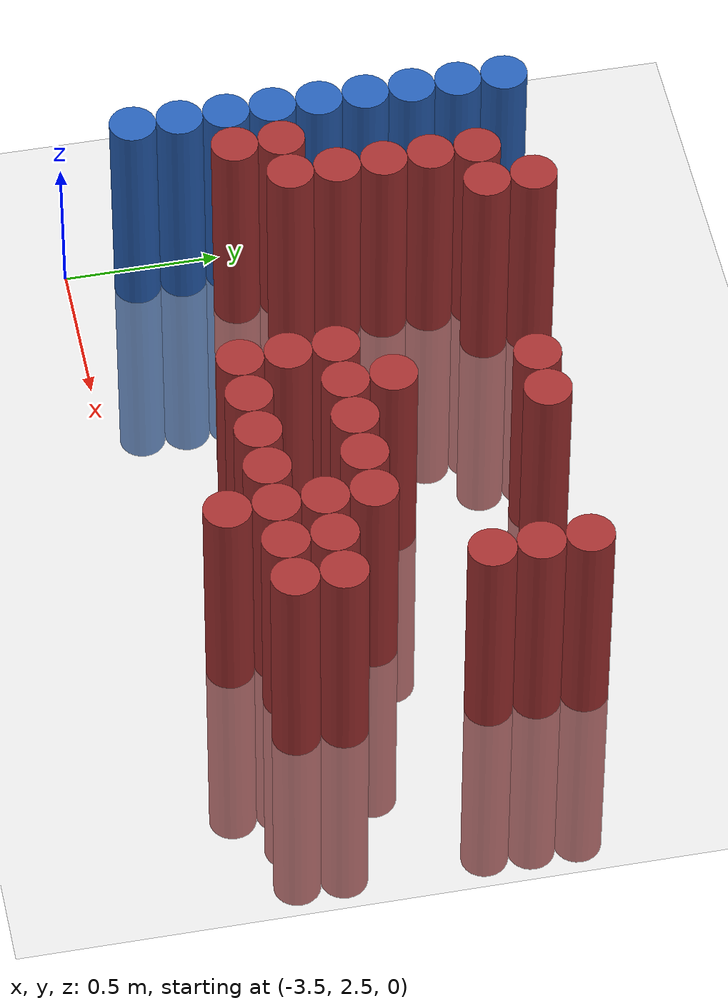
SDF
<sdf version="1.6">
 <world name="default">
  <model name="ground_plane">
   <static>1</static>
   <link name="link">
    <collision name="collision">
     <geometry><plane><normal>0 0 1</normal><size>100 100</size></plane></geometry>
     <surface><friction><ode><mu>100</mu><mu2>50</mu2></ode></friction></surface>
    </collision>
    <visual name="visual">
     <cast_shadows>0</cast_shadows>
     <geometry><plane><normal>0 0 1</normal><size>100 100</size></plane></geometry>
     <material>
      <script><uri>file://media/materials/scripts/gazebo.material</uri><name>Gazebo/Grey</name></script>
     </material>
    </visual>
   </link>
  </model>
  <model name="unit_cylinder_151">
   <static>1</static>
   <pose>-3.425000 2.725000 0.000000 0.000000 0.000000 0.000000</pose>
   <link name="link">
    <inertial>
     <mass>1</mass>
     <inertia><ixx>0.145833</ixx><ixy>0</ixy><ixz>0</ixz><iyy>0.145833</iyy><iyz>0</iyz><izz>0.125</izz></inertia>
    </inertial>
    <collision name="collision">
     <geometry><cylinder><radius>0.075000</radius><length>1.5</length></cylinder></geometry>
    </collision>
    <visual name="visual">
     <geometry><cylinder><radius>0.075000</radius><length>1.5</length></cylinder></geometry>
     <material>
      <ambient>0.152000 0.379000 0.720000 1</ambient>
      <diffuse>0.152000 0.379000 0.720000 1</diffuse>
     </material>
     <material>
      <script><name>Gazebo/Grey</name><uri>file://media/materials/scripts/gazebo.material</uri></script>
     </material>
    </visual>
   </link>
  </model>
  <model name="unit_cylinder_153">
   <static>1</static>
   <pose>-3.425000 2.875000 0.000000 0.000000 0.000000 0.000000</pose>
   <link name="link">
    <inertial>
     <mass>1</mass>
     <inertia><ixx>0.145833</ixx><ixy>0</ixy><ixz>0</ixz><iyy>0.145833</iyy><iyz>0</iyz><izz>0.125</izz></inertia>
    </inertial>
    <collision name="collision">
     <geometry><cylinder><radius>0.075000</radius><length>1.5</length></cylinder></geometry>
    </collision>
    <visual name="visual">
     <geometry><cylinder><radius>0.075000</radius><length>1.5</length></cylinder></geometry>
     <material>
      <ambient>0.152000 0.379000 0.720000 1</ambient>
      <diffuse>0.152000 0.379000 0.720000 1</diffuse>
     </material>
     <material>
      <script><name>Gazebo/Grey</name><uri>file://media/materials/scripts/gazebo.material</uri></script>
     </material>
    </visual>
   </link>
  </model>
  <model name="unit_cylinder_155">
   <static>1</static>
   <pose>-3.425000 3.025000 0.000000 0.000000 0.000000 0.000000</pose>
   <link name="link">
    <inertial>
     <mass>1</mass>
     <inertia><ixx>0.145833</ixx><ixy>0</ixy><ixz>0</ixz><iyy>0.145833</iyy><iyz>0</iyz><izz>0.125</izz></inertia>
    </inertial>
    <collision name="collision">
     <geometry><cylinder><radius>0.075000</radius><length>1.5</length></cylinder></geometry>
    </collision>
    <visual name="visual">
     <geometry><cylinder><radius>0.075000</radius><length>1.5</length></cylinder></geometry>
     <material>
      <ambient>0.152000 0.379000 0.720000 1</ambient>
      <diffuse>0.152000 0.379000 0.720000 1</diffuse>
     </material>
     <material>
      <script><name>Gazebo/Grey</name><uri>file://media/materials/scripts/gazebo.material</uri></script>
     </material>
    </visual>
   </link>
  </model>
  <model name="unit_cylinder_157">
   <static>1</static>
   <pose>-3.425000 3.175000 0.000000 0.000000 0.000000 0.000000</pose>
   <link name="link">
    <inertial>
     <mass>1</mass>
     <inertia><ixx>0.145833</ixx><ixy>0</ixy><ixz>0</ixz><iyy>0.145833</iyy><iyz>0</iyz><izz>0.125</izz></inertia>
    </inertial>
    <collision name="collision">
     <geometry><cylinder><radius>0.075000</radius><length>1.5</length></cylinder></geometry>
    </collision>
    <visual name="visual">
     <geometry><cylinder><radius>0.075000</radius><length>1.5</length></cylinder></geometry>
     <material>
      <ambient>0.152000 0.379000 0.720000 1</ambient>
      <diffuse>0.152000 0.379000 0.720000 1</diffuse>
     </material>
     <material>
      <script><name>Gazebo/Grey</name><uri>file://media/materials/scripts/gazebo.material</uri></script>
     </material>
    </visual>
   </link>
  </model>
  <model name="unit_cylinder_159">
   <static>1</static>
   <pose>-3.425000 3.325000 0.000000 0.000000 0.000000 0.000000</pose>
   <link name="link">
    <inertial>
     <mass>1</mass>
     <inertia><ixx>0.145833</ixx><ixy>0</ixy><ixz>0</ixz><iyy>0.145833</iyy><iyz>0</iyz><izz>0.125</izz></inertia>
    </inertial>
    <collision name="collision">
     <geometry><cylinder><radius>0.075000</radius><length>1.5</length></cylinder></geometry>
    </collision>
    <visual name="visual">
     <geometry><cylinder><radius>0.075000</radius><length>1.5</length></cylinder></geometry>
     <material>
      <ambient>0.152000 0.379000 0.720000 1</ambient>
      <diffuse>0.152000 0.379000 0.720000 1</diffuse>
     </material>
     <material>
      <script><name>Gazebo/Grey</name><uri>file://media/materials/scripts/gazebo.material</uri></script>
     </material>
    </visual>
   </link>
  </model>
  <model name="unit_cylinder_161">
   <static>1</static>
   <pose>-3.425000 3.475000 0.000000 0.000000 0.000000 0.000000</pose>
   <link name="link">
    <inertial>
     <mass>1</mass>
     <inertia><ixx>0.145833</ixx><ixy>0</ixy><ixz>0</ixz><iyy>0.145833</iyy><iyz>0</iyz><izz>0.125</izz></inertia>
    </inertial>
    <collision name="collision">
     <geometry><cylinder><radius>0.075000</radius><length>1.5</length></cylinder></geometry>
    </collision>
    <visual name="visual">
     <geometry><cylinder><radius>0.075000</radius><length>1.5</length></cylinder></geometry>
     <material>
      <ambient>0.152000 0.379000 0.720000 1</ambient>
      <diffuse>0.152000 0.379000 0.720000 1</diffuse>
     </material>
     <material>
      <script><name>Gazebo/Grey</name><uri>file://media/materials/scripts/gazebo.material</uri></script>
     </material>
    </visual>
   </link>
  </model>
  <model name="unit_cylinder_163">
   <static>1</static>
   <pose>-3.425000 3.625000 0.000000 0.000000 0.000000 0.000000</pose>
   <link name="link">
    <inertial>
     <mass>1</mass>
     <inertia><ixx>0.145833</ixx><ixy>0</ixy><ixz>0</ixz><iyy>0.145833</iyy><iyz>0</iyz><izz>0.125</izz></inertia>
    </inertial>
    <collision name="collision">
     <geometry><cylinder><radius>0.075000</radius><length>1.5</length></cylinder></geometry>
    </collision>
    <visual name="visual">
     <geometry><cylinder><radius>0.075000</radius><length>1.5</length></cylinder></geometry>
     <material>
      <ambient>0.152000 0.379000 0.720000 1</ambient>
      <diffuse>0.152000 0.379000 0.720000 1</diffuse>
     </material>
     <material>
      <script><name>Gazebo/Grey</name><uri>file://media/materials/scripts/gazebo.material</uri></script>
     </material>
    </visual>
   </link>
  </model>
  <model name="unit_cylinder_165">
   <static>1</static>
   <pose>-3.425000 3.775000 0.000000 0.000000 0.000000 0.000000</pose>
   <link name="link">
    <inertial>
     <mass>1</mass>
     <inertia><ixx>0.145833</ixx><ixy>0</ixy><ixz>0</ixz><iyy>0.145833</iyy><iyz>0</iyz><izz>0.125</izz></inertia>
    </inertial>
    <collision name="collision">
     <geometry><cylinder><radius>0.075000</radius><length>1.5</length></cylinder></geometry>
    </collision>
    <visual name="visual">
     <geometry><cylinder><radius>0.075000</radius><length>1.5</length></cylinder></geometry>
     <material>
      <ambient>0.152000 0.379000 0.720000 1</ambient>
      <diffuse>0.152000 0.379000 0.720000 1</diffuse>
     </material>
     <material>
      <script><name>Gazebo/Grey</name><uri>file://media/materials/scripts/gazebo.material</uri></script>
     </material>
    </visual>
   </link>
  </model>
  <model name="unit_cylinder_167">
   <static>1</static>
   <pose>-3.425000 3.925000 0.000000 0.000000 0.000000 0.000000</pose>
   <link name="link">
    <inertial>
     <mass>1</mass>
     <inertia><ixx>0.145833</ixx><ixy>0</ixy><ixz>0</ixz><iyy>0.145833</iyy><iyz>0</iyz><izz>0.125</izz></inertia>
    </inertial>
    <collision name="collision">
     <geometry><cylinder><radius>0.075000</radius><length>1.5</length></cylinder></geometry>
    </collision>
    <visual name="visual">
     <geometry><cylinder><radius>0.075000</radius><length>1.5</length></cylinder></geometry>
     <material>
      <ambient>0.152000 0.379000 0.720000 1</ambient>
      <diffuse>0.152000 0.379000 0.720000 1</diffuse>
     </material>
     <material>
      <script><name>Gazebo/Grey</name><uri>file://media/materials/scripts/gazebo.material</uri></script>
     </material>
    </visual>
   </link>
  </model>
  <model name="unit_cylinder_239">
   <static>1</static>
   <pose>-3.425000 2.725000 0.000000 0.000000 0.000000 0.000000</pose>
   <link name="link">
    <inertial>
     <mass>1</mass>
     <inertia><ixx>0.145833</ixx><ixy>0</ixy><ixz>0</ixz><iyy>0.145833</iyy><iyz>0</iyz><izz>0.125</izz></inertia>
    </inertial>
    <collision name="collision">
     <geometry><cylinder><radius>0.075000</radius><length>1.5</length></cylinder></geometry>
    </collision>
    <visual name="visual">
     <geometry><cylinder><radius>0.075000</radius><length>1.5</length></cylinder></geometry>
     <material>
      <ambient>0.152000 0.379000 0.720000 1</ambient>
      <diffuse>0.152000 0.379000 0.720000 1</diffuse>
     </material>
     <material>
      <script><name>Gazebo/Grey</name><uri>file://media/materials/scripts/gazebo.material</uri></script>
     </material>
    </visual>
   </link>
  </model>
  <model name="unit_cylinder_240">
   <static>1</static>
   <pose>-3.425000 2.875000 0.000000 0.000000 0.000000 0.000000</pose>
   <link name="link">
    <inertial>
     <mass>1</mass>
     <inertia><ixx>0.145833</ixx><ixy>0</ixy><ixz>0</ixz><iyy>0.145833</iyy><iyz>0</iyz><izz>0.125</izz></inertia>
    </inertial>
    <collision name="collision">
     <geometry><cylinder><radius>0.075000</radius><length>1.5</length></cylinder></geometry>
    </collision>
    <visual name="visual">
     <geometry><cylinder><radius>0.075000</radius><length>1.5</length></cylinder></geometry>
     <material>
      <ambient>0.152000 0.379000 0.720000 1</ambient>
      <diffuse>0.152000 0.379000 0.720000 1</diffuse>
     </material>
     <material>
      <script><name>Gazebo/Grey</name><uri>file://media/materials/scripts/gazebo.material</uri></script>
     </material>
    </visual>
   </link>
  </model>
  <model name="unit_cylinder_241">
   <static>1</static>
   <pose>-3.425000 3.025000 0.000000 0.000000 0.000000 0.000000</pose>
   <link name="link">
    <inertial>
     <mass>1</mass>
     <inertia><ixx>0.145833</ixx><ixy>0</ixy><ixz>0</ixz><iyy>0.145833</iyy><iyz>0</iyz><izz>0.125</izz></inertia>
    </inertial>
    <collision name="collision">
     <geometry><cylinder><radius>0.075000</radius><length>1.5</length></cylinder></geometry>
    </collision>
    <visual name="visual">
     <geometry><cylinder><radius>0.075000</radius><length>1.5</length></cylinder></geometry>
     <material>
      <ambient>0.152000 0.379000 0.720000 1</ambient>
      <diffuse>0.152000 0.379000 0.720000 1</diffuse>
     </material>
     <material>
      <script><name>Gazebo/Grey</name><uri>file://media/materials/scripts/gazebo.material</uri></script>
     </material>
    </visual>
   </link>
  </model>
  <model name="unit_cylinder_242">
   <static>1</static>
   <pose>-3.425000 3.175000 0.000000 0.000000 0.000000 0.000000</pose>
   <link name="link">
    <inertial>
     <mass>1</mass>
     <inertia><ixx>0.145833</ixx><ixy>0</ixy><ixz>0</ixz><iyy>0.145833</iyy><iyz>0</iyz><izz>0.125</izz></inertia>
    </inertial>
    <collision name="collision">
     <geometry><cylinder><radius>0.075000</radius><length>1.5</length></cylinder></geometry>
    </collision>
    <visual name="visual">
     <geometry><cylinder><radius>0.075000</radius><length>1.5</length></cylinder></geometry>
     <material>
      <ambient>0.152000 0.379000 0.720000 1</ambient>
      <diffuse>0.152000 0.379000 0.720000 1</diffuse>
     </material>
     <material>
      <script><name>Gazebo/Grey</name><uri>file://media/materials/scripts/gazebo.material</uri></script>
     </material>
    </visual>
   </link>
  </model>
  <model name="unit_cylinder_243">
   <static>1</static>
   <pose>-3.425000 3.325000 0.000000 0.000000 0.000000 0.000000</pose>
   <link name="link">
    <inertial>
     <mass>1</mass>
     <inertia><ixx>0.145833</ixx><ixy>0</ixy><ixz>0</ixz><iyy>0.145833</iyy><iyz>0</iyz><izz>0.125</izz></inertia>
    </inertial>
    <collision name="collision">
     <geometry><cylinder><radius>0.075000</radius><length>1.5</length></cylinder></geometry>
    </collision>
    <visual name="visual">
     <geometry><cylinder><radius>0.075000</radius><length>1.5</length></cylinder></geometry>
     <material>
      <ambient>0.152000 0.379000 0.720000 1</ambient>
      <diffuse>0.152000 0.379000 0.720000 1</diffuse>
     </material>
     <material>
      <script><name>Gazebo/Grey</name><uri>file://media/materials/scripts/gazebo.material</uri></script>
     </material>
    </visual>
   </link>
  </model>
  <model name="unit_cylinder_244">
   <static>1</static>
   <pose>-3.425000 3.475000 0.000000 0.000000 0.000000 0.000000</pose>
   <link name="link">
    <inertial>
     <mass>1</mass>
     <inertia><ixx>0.145833</ixx><ixy>0</ixy><ixz>0</ixz><iyy>0.145833</iyy><iyz>0</iyz><izz>0.125</izz></inertia>
    </inertial>
    <collision name="collision">
     <geometry><cylinder><radius>0.075000</radius><length>1.5</length></cylinder></geometry>
    </collision>
    <visual name="visual">
     <geometry><cylinder><radius>0.075000</radius><length>1.5</length></cylinder></geometry>
     <material>
      <ambient>0.152000 0.379000 0.720000 1</ambient>
      <diffuse>0.152000 0.379000 0.720000 1</diffuse>
     </material>
     <material>
      <script><name>Gazebo/Grey</name><uri>file://media/materials/scripts/gazebo.material</uri></script>
     </material>
    </visual>
   </link>
  </model>
  <model name="unit_cylinder_245">
   <static>1</static>
   <pose>-3.425000 3.625000 0.000000 0.000000 0.000000 0.000000</pose>
   <link name="link">
    <inertial>
     <mass>1</mass>
     <inertia><ixx>0.145833</ixx><ixy>0</ixy><ixz>0</ixz><iyy>0.145833</iyy><iyz>0</iyz><izz>0.125</izz></inertia>
    </inertial>
    <collision name="collision">
     <geometry><cylinder><radius>0.075000</radius><length>1.5</length></cylinder></geometry>
    </collision>
    <visual name="visual">
     <geometry><cylinder><radius>0.075000</radius><length>1.5</length></cylinder></geometry>
     <material>
      <ambient>0.152000 0.379000 0.720000 1</ambient>
      <diffuse>0.152000 0.379000 0.720000 1</diffuse>
     </material>
     <material>
      <script><name>Gazebo/Grey</name><uri>file://media/materials/scripts/gazebo.material</uri></script>
     </material>
    </visual>
   </link>
  </model>
  <model name="unit_cylinder_246">
   <static>1</static>
   <pose>-3.425000 3.775000 0.000000 0.000000 0.000000 0.000000</pose>
   <link name="link">
    <inertial>
     <mass>1</mass>
     <inertia><ixx>0.145833</ixx><ixy>0</ixy><ixz>0</ixz><iyy>0.145833</iyy><iyz>0</iyz><izz>0.125</izz></inertia>
    </inertial>
    <collision name="collision">
     <geometry><cylinder><radius>0.075000</radius><length>1.5</length></cylinder></geometry>
    </collision>
    <visual name="visual">
     <geometry><cylinder><radius>0.075000</radius><length>1.5</length></cylinder></geometry>
     <material>
      <ambient>0.152000 0.379000 0.720000 1</ambient>
      <diffuse>0.152000 0.379000 0.720000 1</diffuse>
     </material>
     <material>
      <script><name>Gazebo/Grey</name><uri>file://media/materials/scripts/gazebo.material</uri></script>
     </material>
    </visual>
   </link>
  </model>
  <model name="unit_cylinder_247">
   <static>1</static>
   <pose>-3.425000 3.925000 0.000000 0.000000 0.000000 0.000000</pose>
   <link name="link">
    <inertial>
     <mass>1</mass>
     <inertia><ixx>0.145833</ixx><ixy>0</ixy><ixz>0</ixz><iyy>0.145833</iyy><iyz>0</iyz><izz>0.125</izz></inertia>
    </inertial>
    <collision name="collision">
     <geometry><cylinder><radius>0.075000</radius><length>1.5</length></cylinder></geometry>
    </collision>
    <visual name="visual">
     <geometry><cylinder><radius>0.075000</radius><length>1.5</length></cylinder></geometry>
     <material>
      <ambient>0.152000 0.379000 0.720000 1</ambient>
      <diffuse>0.152000 0.379000 0.720000 1</diffuse>
     </material>
     <material>
      <script><name>Gazebo/Grey</name><uri>file://media/materials/scripts/gazebo.material</uri></script>
     </material>
    </visual>
   </link>
  </model>
  <model name="unit_cylinder_273">
   <static>1</static>
   <pose>-3.275000 3.025000 0.000000 0.000000 0.000000 0.000000</pose>
   <link name="link">
    <inertial>
     <mass>1</mass>
     <inertia><ixx>0.145833</ixx><ixy>0</ixy><ixz>0</ixz><iyy>0.145833</iyy><iyz>0</iyz><izz>0.125</izz></inertia>
    </inertial>
    <collision name="collision">
     <geometry><cylinder><radius>0.075000</radius><length>1.5</length></cylinder></geometry>
    </collision>
    <visual name="visual">
     <geometry><cylinder><radius>0.075000</radius><length>1.5</length></cylinder></geometry>
     <material>
      <ambient>0.648000 0.192000 0.192000 1</ambient>
      <diffuse>0.648000 0.192000 0.192000 1</diffuse>
     </material>
     <material>
      <script><name>Gazebo/Grey</name><uri>file://media/materials/scripts/gazebo.material</uri></script>
     </material>
    </visual>
   </link>
  </model>
  <model name="unit_cylinder_274">
   <static>1</static>
   <pose>-3.275000 3.175000 0.000000 0.000000 0.000000 0.000000</pose>
   <link name="link">
    <inertial>
     <mass>1</mass>
     <inertia><ixx>0.145833</ixx><ixy>0</ixy><ixz>0</ixz><iyy>0.145833</iyy><iyz>0</iyz><izz>0.125</izz></inertia>
    </inertial>
    <collision name="collision">
     <geometry><cylinder><radius>0.075000</radius><length>1.5</length></cylinder></geometry>
    </collision>
    <visual name="visual">
     <geometry><cylinder><radius>0.075000</radius><length>1.5</length></cylinder></geometry>
     <material>
      <ambient>0.648000 0.192000 0.192000 1</ambient>
      <diffuse>0.648000 0.192000 0.192000 1</diffuse>
     </material>
     <material>
      <script><name>Gazebo/Grey</name><uri>file://media/materials/scripts/gazebo.material</uri></script>
     </material>
    </visual>
   </link>
  </model>
  <model name="unit_cylinder_290">
   <static>1</static>
   <pose>-3.125000 3.175000 0.000000 0.000000 0.000000 0.000000</pose>
   <link name="link">
    <inertial>
     <mass>1</mass>
     <inertia><ixx>0.145833</ixx><ixy>0</ixy><ixz>0</ixz><iyy>0.145833</iyy><iyz>0</iyz><izz>0.125</izz></inertia>
    </inertial>
    <collision name="collision">
     <geometry><cylinder><radius>0.075000</radius><length>1.5</length></cylinder></geometry>
    </collision>
    <visual name="visual">
     <geometry><cylinder><radius>0.075000</radius><length>1.5</length></cylinder></geometry>
     <material>
      <ambient>0.648000 0.192000 0.192000 1</ambient>
      <diffuse>0.648000 0.192000 0.192000 1</diffuse>
     </material>
     <material>
      <script><name>Gazebo/Grey</name><uri>file://media/materials/scripts/gazebo.material</uri></script>
     </material>
    </visual>
   </link>
  </model>
  <model name="unit_cylinder_291">
   <static>1</static>
   <pose>-3.125000 3.325000 0.000000 0.000000 0.000000 0.000000</pose>
   <link name="link">
    <inertial>
     <mass>1</mass>
     <inertia><ixx>0.145833</ixx><ixy>0</ixy><ixz>0</ixz><iyy>0.145833</iyy><iyz>0</iyz><izz>0.125</izz></inertia>
    </inertial>
    <collision name="collision">
     <geometry><cylinder><radius>0.075000</radius><length>1.5</length></cylinder></geometry>
    </collision>
    <visual name="visual">
     <geometry><cylinder><radius>0.075000</radius><length>1.5</length></cylinder></geometry>
     <material>
      <ambient>0.648000 0.192000 0.192000 1</ambient>
      <diffuse>0.648000 0.192000 0.192000 1</diffuse>
     </material>
     <material>
      <script><name>Gazebo/Grey</name><uri>file://media/materials/scripts/gazebo.material</uri></script>
     </material>
    </visual>
   </link>
  </model>
  <model name="unit_cylinder_292">
   <static>1</static>
   <pose>-3.125000 3.475000 0.000000 0.000000 0.000000 0.000000</pose>
   <link name="link">
    <inertial>
     <mass>1</mass>
     <inertia><ixx>0.145833</ixx><ixy>0</ixy><ixz>0</ixz><iyy>0.145833</iyy><iyz>0</iyz><izz>0.125</izz></inertia>
    </inertial>
    <collision name="collision">
     <geometry><cylinder><radius>0.075000</radius><length>1.5</length></cylinder></geometry>
    </collision>
    <visual name="visual">
     <geometry><cylinder><radius>0.075000</radius><length>1.5</length></cylinder></geometry>
     <material>
      <ambient>0.648000 0.192000 0.192000 1</ambient>
      <diffuse>0.648000 0.192000 0.192000 1</diffuse>
     </material>
     <material>
      <script><name>Gazebo/Grey</name><uri>file://media/materials/scripts/gazebo.material</uri></script>
     </material>
    </visual>
   </link>
  </model>
  <model name="unit_cylinder_293">
   <static>1</static>
   <pose>-3.125000 3.625000 0.000000 0.000000 0.000000 0.000000</pose>
   <link name="link">
    <inertial>
     <mass>1</mass>
     <inertia><ixx>0.145833</ixx><ixy>0</ixy><ixz>0</ixz><iyy>0.145833</iyy><iyz>0</iyz><izz>0.125</izz></inertia>
    </inertial>
    <collision name="collision">
     <geometry><cylinder><radius>0.075000</radius><length>1.5</length></cylinder></geometry>
    </collision>
    <visual name="visual">
     <geometry><cylinder><radius>0.075000</radius><length>1.5</length></cylinder></geometry>
     <material>
      <ambient>0.648000 0.192000 0.192000 1</ambient>
      <diffuse>0.648000 0.192000 0.192000 1</diffuse>
     </material>
     <material>
      <script><name>Gazebo/Grey</name><uri>file://media/materials/scripts/gazebo.material</uri></script>
     </material>
    </visual>
   </link>
  </model>
  <model name="unit_cylinder_294">
   <static>1</static>
   <pose>-3.125000 3.775000 0.000000 0.000000 0.000000 0.000000</pose>
   <link name="link">
    <inertial>
     <mass>1</mass>
     <inertia><ixx>0.145833</ixx><ixy>0</ixy><ixz>0</ixz><iyy>0.145833</iyy><iyz>0</iyz><izz>0.125</izz></inertia>
    </inertial>
    <collision name="collision">
     <geometry><cylinder><radius>0.075000</radius><length>1.5</length></cylinder></geometry>
    </collision>
    <visual name="visual">
     <geometry><cylinder><radius>0.075000</radius><length>1.5</length></cylinder></geometry>
     <material>
      <ambient>0.648000 0.192000 0.192000 1</ambient>
      <diffuse>0.648000 0.192000 0.192000 1</diffuse>
     </material>
     <material>
      <script><name>Gazebo/Grey</name><uri>file://media/materials/scripts/gazebo.material</uri></script>
     </material>
    </visual>
   </link>
  </model>
  <model name="unit_cylinder_302">
   <static>1</static>
   <pose>-2.975000 3.775000 0.000000 0.000000 0.000000 0.000000</pose>
   <link name="link">
    <inertial>
     <mass>1</mass>
     <inertia><ixx>0.145833</ixx><ixy>0</ixy><ixz>0</ixz><iyy>0.145833</iyy><iyz>0</iyz><izz>0.125</izz></inertia>
    </inertial>
    <collision name="collision">
     <geometry><cylinder><radius>0.075000</radius><length>1.5</length></cylinder></geometry>
    </collision>
    <visual name="visual">
     <geometry><cylinder><radius>0.075000</radius><length>1.5</length></cylinder></geometry>
     <material>
      <ambient>0.648000 0.192000 0.192000 1</ambient>
      <diffuse>0.648000 0.192000 0.192000 1</diffuse>
     </material>
     <material>
      <script><name>Gazebo/Grey</name><uri>file://media/materials/scripts/gazebo.material</uri></script>
     </material>
    </visual>
   </link>
  </model>
  <model name="unit_cylinder_303">
   <static>1</static>
   <pose>-2.975000 3.925000 0.000000 0.000000 0.000000 0.000000</pose>
   <link name="link">
    <inertial>
     <mass>1</mass>
     <inertia><ixx>0.145833</ixx><ixy>0</ixy><ixz>0</ixz><iyy>0.145833</iyy><iyz>0</iyz><izz>0.125</izz></inertia>
    </inertial>
    <collision name="collision">
     <geometry><cylinder><radius>0.075000</radius><length>1.5</length></cylinder></geometry>
    </collision>
    <visual name="visual">
     <geometry><cylinder><radius>0.075000</radius><length>1.5</length></cylinder></geometry>
     <material>
      <ambient>0.648000 0.192000 0.192000 1</ambient>
      <diffuse>0.648000 0.192000 0.192000 1</diffuse>
     </material>
     <material>
      <script><name>Gazebo/Grey</name><uri>file://media/materials/scripts/gazebo.material</uri></script>
     </material>
    </visual>
   </link>
  </model>
  <model name="unit_cylinder_330">
   <static>1</static>
   <pose>-2.375000 2.875000 0.000000 0.000000 0.000000 0.000000</pose>
   <link name="link">
    <inertial>
     <mass>1</mass>
     <inertia><ixx>0.145833</ixx><ixy>0</ixy><ixz>0</ixz><iyy>0.145833</iyy><iyz>0</iyz><izz>0.125</izz></inertia>
    </inertial>
    <collision name="collision">
     <geometry><cylinder><radius>0.075000</radius><length>1.5</length></cylinder></geometry>
    </collision>
    <visual name="visual">
     <geometry><cylinder><radius>0.075000</radius><length>1.5</length></cylinder></geometry>
     <material>
      <ambient>0.648000 0.192000 0.192000 1</ambient>
      <diffuse>0.648000 0.192000 0.192000 1</diffuse>
     </material>
     <material>
      <script><name>Gazebo/Grey</name><uri>file://media/materials/scripts/gazebo.material</uri></script>
     </material>
    </visual>
   </link>
  </model>
  <model name="unit_cylinder_331">
   <static>1</static>
   <pose>-2.375000 3.025000 0.000000 0.000000 0.000000 0.000000</pose>
   <link name="link">
    <inertial>
     <mass>1</mass>
     <inertia><ixx>0.145833</ixx><ixy>0</ixy><ixz>0</ixz><iyy>0.145833</iyy><iyz>0</iyz><izz>0.125</izz></inertia>
    </inertial>
    <collision name="collision">
     <geometry><cylinder><radius>0.075000</radius><length>1.5</length></cylinder></geometry>
    </collision>
    <visual name="visual">
     <geometry><cylinder><radius>0.075000</radius><length>1.5</length></cylinder></geometry>
     <material>
      <ambient>0.648000 0.192000 0.192000 1</ambient>
      <diffuse>0.648000 0.192000 0.192000 1</diffuse>
     </material>
     <material>
      <script><name>Gazebo/Grey</name><uri>file://media/materials/scripts/gazebo.material</uri></script>
     </material>
    </visual>
   </link>
  </model>
  <model name="unit_cylinder_332">
   <static>1</static>
   <pose>-2.375000 3.175000 0.000000 0.000000 0.000000 0.000000</pose>
   <link name="link">
    <inertial>
     <mass>1</mass>
     <inertia><ixx>0.145833</ixx><ixy>0</ixy><ixz>0</ixz><iyy>0.145833</iyy><iyz>0</iyz><izz>0.125</izz></inertia>
    </inertial>
    <collision name="collision">
     <geometry><cylinder><radius>0.075000</radius><length>1.5</length></cylinder></geometry>
    </collision>
    <visual name="visual">
     <geometry><cylinder><radius>0.075000</radius><length>1.5</length></cylinder></geometry>
     <material>
      <ambient>0.648000 0.192000 0.192000 1</ambient>
      <diffuse>0.648000 0.192000 0.192000 1</diffuse>
     </material>
     <material>
      <script><name>Gazebo/Grey</name><uri>file://media/materials/scripts/gazebo.material</uri></script>
     </material>
    </visual>
   </link>
  </model>
  <model name="unit_cylinder_336">
   <static>1</static>
   <pose>-2.225000 2.875000 0.000000 0.000000 0.000000 0.000000</pose>
   <link name="link">
    <inertial>
     <mass>1</mass>
     <inertia><ixx>0.145833</ixx><ixy>0</ixy><ixz>0</ixz><iyy>0.145833</iyy><iyz>0</iyz><izz>0.125</izz></inertia>
    </inertial>
    <collision name="collision">
     <geometry><cylinder><radius>0.075000</radius><length>1.5</length></cylinder></geometry>
    </collision>
    <visual name="visual">
     <geometry><cylinder><radius>0.075000</radius><length>1.5</length></cylinder></geometry>
     <material>
      <ambient>0.648000 0.192000 0.192000 1</ambient>
      <diffuse>0.648000 0.192000 0.192000 1</diffuse>
     </material>
     <material>
      <script><name>Gazebo/Grey</name><uri>file://media/materials/scripts/gazebo.material</uri></script>
     </material>
    </visual>
   </link>
  </model>
  <model name="unit_cylinder_337">
   <static>1</static>
   <pose>-2.225000 3.175000 0.000000 0.000000 0.000000 0.000000</pose>
   <link name="link">
    <inertial>
     <mass>1</mass>
     <inertia><ixx>0.145833</ixx><ixy>0</ixy><ixz>0</ixz><iyy>0.145833</iyy><iyz>0</iyz><izz>0.125</izz></inertia>
    </inertial>
    <collision name="collision">
     <geometry><cylinder><radius>0.075000</radius><length>1.5</length></cylinder></geometry>
    </collision>
    <visual name="visual">
     <geometry><cylinder><radius>0.075000</radius><length>1.5</length></cylinder></geometry>
     <material>
      <ambient>0.648000 0.192000 0.192000 1</ambient>
      <diffuse>0.648000 0.192000 0.192000 1</diffuse>
     </material>
     <material>
      <script><name>Gazebo/Grey</name><uri>file://media/materials/scripts/gazebo.material</uri></script>
     </material>
    </visual>
   </link>
  </model>
  <model name="unit_cylinder_338">
   <static>1</static>
   <pose>-2.225000 3.325000 0.000000 0.000000 0.000000 0.000000</pose>
   <link name="link">
    <inertial>
     <mass>1</mass>
     <inertia><ixx>0.145833</ixx><ixy>0</ixy><ixz>0</ixz><iyy>0.145833</iyy><iyz>0</iyz><izz>0.125</izz></inertia>
    </inertial>
    <collision name="collision">
     <geometry><cylinder><radius>0.075000</radius><length>1.5</length></cylinder></geometry>
    </collision>
    <visual name="visual">
     <geometry><cylinder><radius>0.075000</radius><length>1.5</length></cylinder></geometry>
     <material>
      <ambient>0.648000 0.192000 0.192000 1</ambient>
      <diffuse>0.648000 0.192000 0.192000 1</diffuse>
     </material>
     <material>
      <script><name>Gazebo/Grey</name><uri>file://media/materials/scripts/gazebo.material</uri></script>
     </material>
    </visual>
   </link>
  </model>
  <model name="unit_cylinder_339">
   <static>1</static>
   <pose>-2.225000 3.775000 0.000000 0.000000 0.000000 0.000000</pose>
   <link name="link">
    <inertial>
     <mass>1</mass>
     <inertia><ixx>0.145833</ixx><ixy>0</ixy><ixz>0</ixz><iyy>0.145833</iyy><iyz>0</iyz><izz>0.125</izz></inertia>
    </inertial>
    <collision name="collision">
     <geometry><cylinder><radius>0.075000</radius><length>1.5</length></cylinder></geometry>
    </collision>
    <visual name="visual">
     <geometry><cylinder><radius>0.075000</radius><length>1.5</length></cylinder></geometry>
     <material>
      <ambient>0.648000 0.192000 0.192000 1</ambient>
      <diffuse>0.648000 0.192000 0.192000 1</diffuse>
     </material>
     <material>
      <script><name>Gazebo/Grey</name><uri>file://media/materials/scripts/gazebo.material</uri></script>
     </material>
    </visual>
   </link>
  </model>
  <model name="unit_cylinder_342">
   <static>1</static>
   <pose>-2.075000 2.875000 0.000000 0.000000 0.000000 0.000000</pose>
   <link name="link">
    <inertial>
     <mass>1</mass>
     <inertia><ixx>0.145833</ixx><ixy>0</ixy><ixz>0</ixz><iyy>0.145833</iyy><iyz>0</iyz><izz>0.125</izz></inertia>
    </inertial>
    <collision name="collision">
     <geometry><cylinder><radius>0.075000</radius><length>1.5</length></cylinder></geometry>
    </collision>
    <visual name="visual">
     <geometry><cylinder><radius>0.075000</radius><length>1.5</length></cylinder></geometry>
     <material>
      <ambient>0.648000 0.192000 0.192000 1</ambient>
      <diffuse>0.648000 0.192000 0.192000 1</diffuse>
     </material>
     <material>
      <script><name>Gazebo/Grey</name><uri>file://media/materials/scripts/gazebo.material</uri></script>
     </material>
    </visual>
   </link>
  </model>
  <model name="unit_cylinder_343">
   <static>1</static>
   <pose>-2.075000 3.175000 0.000000 0.000000 0.000000 0.000000</pose>
   <link name="link">
    <inertial>
     <mass>1</mass>
     <inertia><ixx>0.145833</ixx><ixy>0</ixy><ixz>0</ixz><iyy>0.145833</iyy><iyz>0</iyz><izz>0.125</izz></inertia>
    </inertial>
    <collision name="collision">
     <geometry><cylinder><radius>0.075000</radius><length>1.5</length></cylinder></geometry>
    </collision>
    <visual name="visual">
     <geometry><cylinder><radius>0.075000</radius><length>1.5</length></cylinder></geometry>
     <material>
      <ambient>0.648000 0.192000 0.192000 1</ambient>
      <diffuse>0.648000 0.192000 0.192000 1</diffuse>
     </material>
     <material>
      <script><name>Gazebo/Grey</name><uri>file://media/materials/scripts/gazebo.material</uri></script>
     </material>
    </visual>
   </link>
  </model>
  <model name="unit_cylinder_344">
   <static>1</static>
   <pose>-2.075000 3.775000 0.000000 0.000000 0.000000 0.000000</pose>
   <link name="link">
    <inertial>
     <mass>1</mass>
     <inertia><ixx>0.145833</ixx><ixy>0</ixy><ixz>0</ixz><iyy>0.145833</iyy><iyz>0</iyz><izz>0.125</izz></inertia>
    </inertial>
    <collision name="collision">
     <geometry><cylinder><radius>0.075000</radius><length>1.5</length></cylinder></geometry>
    </collision>
    <visual name="visual">
     <geometry><cylinder><radius>0.075000</radius><length>1.5</length></cylinder></geometry>
     <material>
      <ambient>0.648000 0.192000 0.192000 1</ambient>
      <diffuse>0.648000 0.192000 0.192000 1</diffuse>
     </material>
     <material>
      <script><name>Gazebo/Grey</name><uri>file://media/materials/scripts/gazebo.material</uri></script>
     </material>
    </visual>
   </link>
  </model>
  <model name="unit_cylinder_350">
   <static>1</static>
   <pose>-1.925000 2.875000 0.000000 0.000000 0.000000 0.000000</pose>
   <link name="link">
    <inertial>
     <mass>1</mass>
     <inertia><ixx>0.145833</ixx><ixy>0</ixy><ixz>0</ixz><iyy>0.145833</iyy><iyz>0</iyz><izz>0.125</izz></inertia>
    </inertial>
    <collision name="collision">
     <geometry><cylinder><radius>0.075000</radius><length>1.5</length></cylinder></geometry>
    </collision>
    <visual name="visual">
     <geometry><cylinder><radius>0.075000</radius><length>1.5</length></cylinder></geometry>
     <material>
      <ambient>0.648000 0.192000 0.192000 1</ambient>
      <diffuse>0.648000 0.192000 0.192000 1</diffuse>
     </material>
     <material>
      <script><name>Gazebo/Grey</name><uri>file://media/materials/scripts/gazebo.material</uri></script>
     </material>
    </visual>
   </link>
  </model>
  <model name="unit_cylinder_351">
   <static>1</static>
   <pose>-1.925000 3.175000 0.000000 0.000000 0.000000 0.000000</pose>
   <link name="link">
    <inertial>
     <mass>1</mass>
     <inertia><ixx>0.145833</ixx><ixy>0</ixy><ixz>0</ixz><iyy>0.145833</iyy><iyz>0</iyz><izz>0.125</izz></inertia>
    </inertial>
    <collision name="collision">
     <geometry><cylinder><radius>0.075000</radius><length>1.5</length></cylinder></geometry>
    </collision>
    <visual name="visual">
     <geometry><cylinder><radius>0.075000</radius><length>1.5</length></cylinder></geometry>
     <material>
      <ambient>0.648000 0.192000 0.192000 1</ambient>
      <diffuse>0.648000 0.192000 0.192000 1</diffuse>
     </material>
     <material>
      <script><name>Gazebo/Grey</name><uri>file://media/materials/scripts/gazebo.material</uri></script>
     </material>
    </visual>
   </link>
  </model>
  <model name="unit_cylinder_361">
   <static>1</static>
   <pose>-1.775000 2.725000 0.000000 0.000000 0.000000 0.000000</pose>
   <link name="link">
    <inertial>
     <mass>1</mass>
     <inertia><ixx>0.145833</ixx><ixy>0</ixy><ixz>0</ixz><iyy>0.145833</iyy><iyz>0</iyz><izz>0.125</izz></inertia>
    </inertial>
    <collision name="collision">
     <geometry><cylinder><radius>0.075000</radius><length>1.5</length></cylinder></geometry>
    </collision>
    <visual name="visual">
     <geometry><cylinder><radius>0.075000</radius><length>1.5</length></cylinder></geometry>
     <material>
      <ambient>0.648000 0.192000 0.192000 1</ambient>
      <diffuse>0.648000 0.192000 0.192000 1</diffuse>
     </material>
     <material>
      <script><name>Gazebo/Grey</name><uri>file://media/materials/scripts/gazebo.material</uri></script>
     </material>
    </visual>
   </link>
  </model>
  <model name="unit_cylinder_362">
   <static>1</static>
   <pose>-1.775000 2.875000 0.000000 0.000000 0.000000 0.000000</pose>
   <link name="link">
    <inertial>
     <mass>1</mass>
     <inertia><ixx>0.145833</ixx><ixy>0</ixy><ixz>0</ixz><iyy>0.145833</iyy><iyz>0</iyz><izz>0.125</izz></inertia>
    </inertial>
    <collision name="collision">
     <geometry><cylinder><radius>0.075000</radius><length>1.5</length></cylinder></geometry>
    </collision>
    <visual name="visual">
     <geometry><cylinder><radius>0.075000</radius><length>1.5</length></cylinder></geometry>
     <material>
      <ambient>0.648000 0.192000 0.192000 1</ambient>
      <diffuse>0.648000 0.192000 0.192000 1</diffuse>
     </material>
     <material>
      <script><name>Gazebo/Grey</name><uri>file://media/materials/scripts/gazebo.material</uri></script>
     </material>
    </visual>
   </link>
  </model>
  <model name="unit_cylinder_363">
   <static>1</static>
   <pose>-1.775000 3.025000 0.000000 0.000000 0.000000 0.000000</pose>
   <link name="link">
    <inertial>
     <mass>1</mass>
     <inertia><ixx>0.145833</ixx><ixy>0</ixy><ixz>0</ixz><iyy>0.145833</iyy><iyz>0</iyz><izz>0.125</izz></inertia>
    </inertial>
    <collision name="collision">
     <geometry><cylinder><radius>0.075000</radius><length>1.5</length></cylinder></geometry>
    </collision>
    <visual name="visual">
     <geometry><cylinder><radius>0.075000</radius><length>1.5</length></cylinder></geometry>
     <material>
      <ambient>0.648000 0.192000 0.192000 1</ambient>
      <diffuse>0.648000 0.192000 0.192000 1</diffuse>
     </material>
     <material>
      <script><name>Gazebo/Grey</name><uri>file://media/materials/scripts/gazebo.material</uri></script>
     </material>
    </visual>
   </link>
  </model>
  <model name="unit_cylinder_364">
   <static>1</static>
   <pose>-1.775000 3.175000 0.000000 0.000000 0.000000 0.000000</pose>
   <link name="link">
    <inertial>
     <mass>1</mass>
     <inertia><ixx>0.145833</ixx><ixy>0</ixy><ixz>0</ixz><iyy>0.145833</iyy><iyz>0</iyz><izz>0.125</izz></inertia>
    </inertial>
    <collision name="collision">
     <geometry><cylinder><radius>0.075000</radius><length>1.5</length></cylinder></geometry>
    </collision>
    <visual name="visual">
     <geometry><cylinder><radius>0.075000</radius><length>1.5</length></cylinder></geometry>
     <material>
      <ambient>0.648000 0.192000 0.192000 1</ambient>
      <diffuse>0.648000 0.192000 0.192000 1</diffuse>
     </material>
     <material>
      <script><name>Gazebo/Grey</name><uri>file://media/materials/scripts/gazebo.material</uri></script>
     </material>
    </visual>
   </link>
  </model>
  <model name="unit_cylinder_374">
   <static>1</static>
   <pose>-1.625000 2.875000 0.000000 0.000000 0.000000 0.000000</pose>
   <link name="link">
    <inertial>
     <mass>1</mass>
     <inertia><ixx>0.145833</ixx><ixy>0</ixy><ixz>0</ixz><iyy>0.145833</iyy><iyz>0</iyz><izz>0.125</izz></inertia>
    </inertial>
    <collision name="collision">
     <geometry><cylinder><radius>0.075000</radius><length>1.5</length></cylinder></geometry>
    </collision>
    <visual name="visual">
     <geometry><cylinder><radius>0.075000</radius><length>1.5</length></cylinder></geometry>
     <material>
      <ambient>0.648000 0.192000 0.192000 1</ambient>
      <diffuse>0.648000 0.192000 0.192000 1</diffuse>
     </material>
     <material>
      <script><name>Gazebo/Grey</name><uri>file://media/materials/scripts/gazebo.material</uri></script>
     </material>
    </visual>
   </link>
  </model>
  <model name="unit_cylinder_375">
   <static>1</static>
   <pose>-1.625000 3.025000 0.000000 0.000000 0.000000 0.000000</pose>
   <link name="link">
    <inertial>
     <mass>1</mass>
     <inertia><ixx>0.145833</ixx><ixy>0</ixy><ixz>0</ixz><iyy>0.145833</iyy><iyz>0</iyz><izz>0.125</izz></inertia>
    </inertial>
    <collision name="collision">
     <geometry><cylinder><radius>0.075000</radius><length>1.5</length></cylinder></geometry>
    </collision>
    <visual name="visual">
     <geometry><cylinder><radius>0.075000</radius><length>1.5</length></cylinder></geometry>
     <material>
      <ambient>0.648000 0.192000 0.192000 1</ambient>
      <diffuse>0.648000 0.192000 0.192000 1</diffuse>
     </material>
     <material>
      <script><name>Gazebo/Grey</name><uri>file://media/materials/scripts/gazebo.material</uri></script>
     </material>
    </visual>
   </link>
  </model>
  <model name="unit_cylinder_381">
   <static>1</static>
   <pose>-1.475000 2.875000 0.000000 0.000000 0.000000 0.000000</pose>
   <link name="link">
    <inertial>
     <mass>1</mass>
     <inertia><ixx>0.145833</ixx><ixy>0</ixy><ixz>0</ixz><iyy>0.145833</iyy><iyz>0</iyz><izz>0.125</izz></inertia>
    </inertial>
    <collision name="collision">
     <geometry><cylinder><radius>0.075000</radius><length>1.5</length></cylinder></geometry>
    </collision>
    <visual name="visual">
     <geometry><cylinder><radius>0.075000</radius><length>1.5</length></cylinder></geometry>
     <material>
      <ambient>0.648000 0.192000 0.192000 1</ambient>
      <diffuse>0.648000 0.192000 0.192000 1</diffuse>
     </material>
     <material>
      <script><name>Gazebo/Grey</name><uri>file://media/materials/scripts/gazebo.material</uri></script>
     </material>
    </visual>
   </link>
  </model>
  <model name="unit_cylinder_382">
   <static>1</static>
   <pose>-1.475000 3.025000 0.000000 0.000000 0.000000 0.000000</pose>
   <link name="link">
    <inertial>
     <mass>1</mass>
     <inertia><ixx>0.145833</ixx><ixy>0</ixy><ixz>0</ixz><iyy>0.145833</iyy><iyz>0</iyz><izz>0.125</izz></inertia>
    </inertial>
    <collision name="collision">
     <geometry><cylinder><radius>0.075000</radius><length>1.5</length></cylinder></geometry>
    </collision>
    <visual name="visual">
     <geometry><cylinder><radius>0.075000</radius><length>1.5</length></cylinder></geometry>
     <material>
      <ambient>0.648000 0.192000 0.192000 1</ambient>
      <diffuse>0.648000 0.192000 0.192000 1</diffuse>
     </material>
     <material>
      <script><name>Gazebo/Grey</name><uri>file://media/materials/scripts/gazebo.material</uri></script>
     </material>
    </visual>
   </link>
  </model>
  <model name="unit_cylinder_383">
   <static>1</static>
   <pose>-1.475000 3.475000 0.000000 0.000000 0.000000 0.000000</pose>
   <link name="link">
    <inertial>
     <mass>1</mass>
     <inertia><ixx>0.145833</ixx><ixy>0</ixy><ixz>0</ixz><iyy>0.145833</iyy><iyz>0</iyz><izz>0.125</izz></inertia>
    </inertial>
    <collision name="collision">
     <geometry><cylinder><radius>0.075000</radius><length>1.5</length></cylinder></geometry>
    </collision>
    <visual name="visual">
     <geometry><cylinder><radius>0.075000</radius><length>1.5</length></cylinder></geometry>
     <material>
      <ambient>0.648000 0.192000 0.192000 1</ambient>
      <diffuse>0.648000 0.192000 0.192000 1</diffuse>
     </material>
     <material>
      <script><name>Gazebo/Grey</name><uri>file://media/materials/scripts/gazebo.material</uri></script>
     </material>
    </visual>
   </link>
  </model>
  <model name="unit_cylinder_384">
   <static>1</static>
   <pose>-1.475000 3.625000 0.000000 0.000000 0.000000 0.000000</pose>
   <link name="link">
    <inertial>
     <mass>1</mass>
     <inertia><ixx>0.145833</ixx><ixy>0</ixy><ixz>0</ixz><iyy>0.145833</iyy><iyz>0</iyz><izz>0.125</izz></inertia>
    </inertial>
    <collision name="collision">
     <geometry><cylinder><radius>0.075000</radius><length>1.5</length></cylinder></geometry>
    </collision>
    <visual name="visual">
     <geometry><cylinder><radius>0.075000</radius><length>1.5</length></cylinder></geometry>
     <material>
      <ambient>0.648000 0.192000 0.192000 1</ambient>
      <diffuse>0.648000 0.192000 0.192000 1</diffuse>
     </material>
     <material>
      <script><name>Gazebo/Grey</name><uri>file://media/materials/scripts/gazebo.material</uri></script>
     </material>
    </visual>
   </link>
  </model>
  <model name="unit_cylinder_385">
   <static>1</static>
   <pose>-1.475000 3.775000 0.000000 0.000000 0.000000 0.000000</pose>
   <link name="link">
    <inertial>
     <mass>1</mass>
     <inertia><ixx>0.145833</ixx><ixy>0</ixy><ixz>0</ixz><iyy>0.145833</iyy><iyz>0</iyz><izz>0.125</izz></inertia>
    </inertial>
    <collision name="collision">
     <geometry><cylinder><radius>0.075000</radius><length>1.5</length></cylinder></geometry>
    </collision>
    <visual name="visual">
     <geometry><cylinder><radius>0.075000</radius><length>1.5</length></cylinder></geometry>
     <material>
      <ambient>0.648000 0.192000 0.192000 1</ambient>
      <diffuse>0.648000 0.192000 0.192000 1</diffuse>
     </material>
     <material>
      <script><name>Gazebo/Grey</name><uri>file://media/materials/scripts/gazebo.material</uri></script>
     </material>
    </visual>
   </link>
  </model>
 </world>
</sdf>
